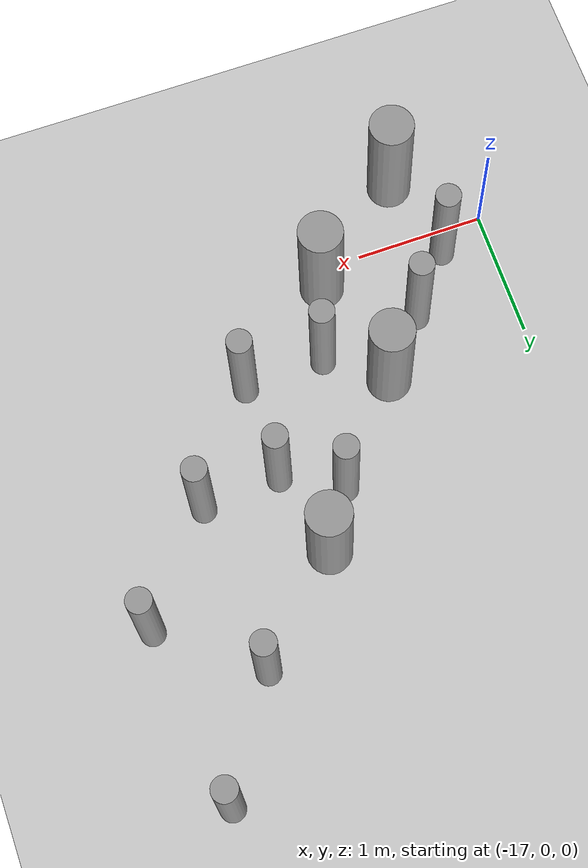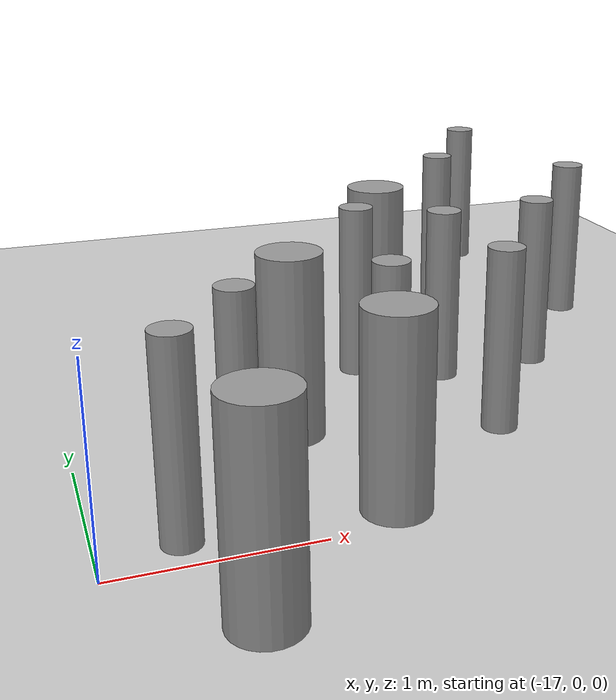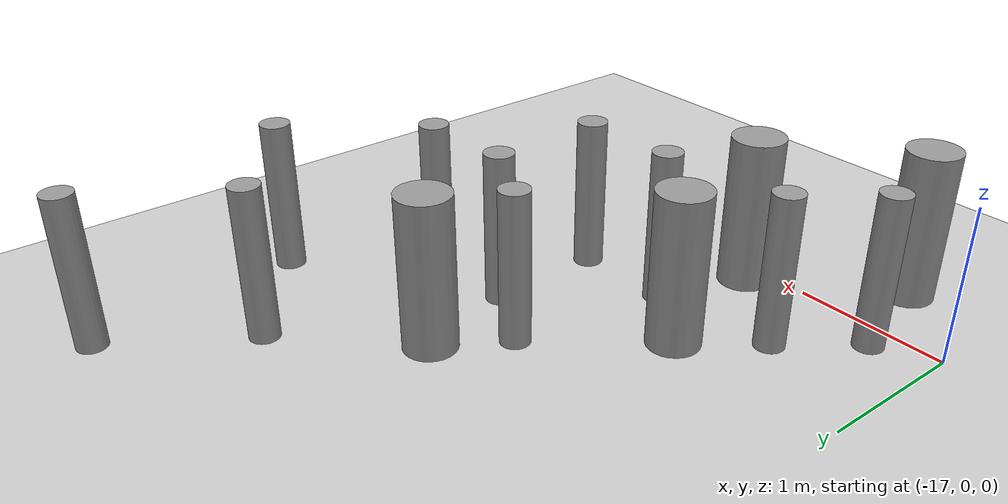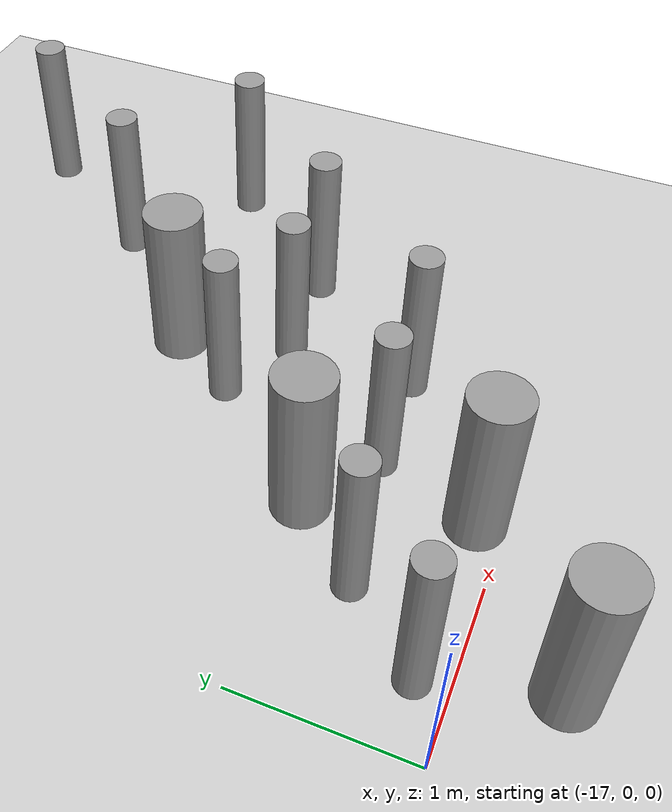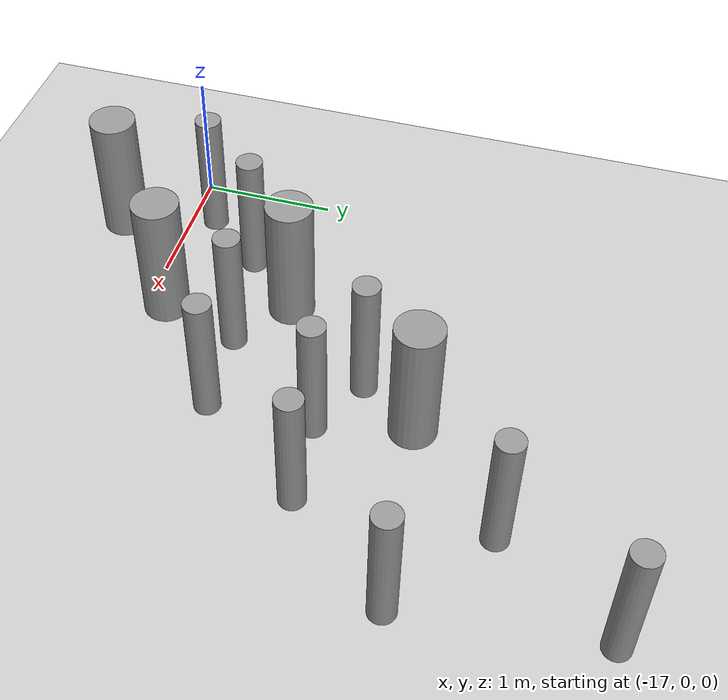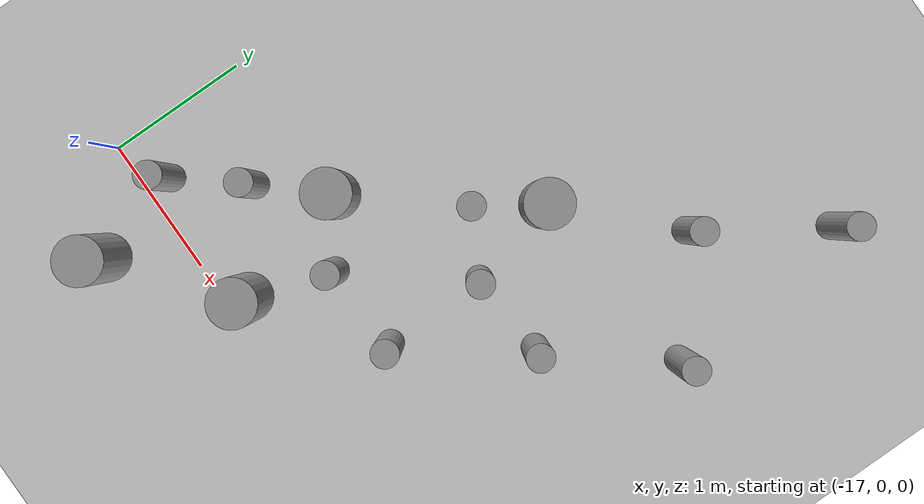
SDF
<sdf version="1.6">
 <world name="default">
  <model name="ground_plane">
   <static>1</static>
   <link name="link">
    <collision name="collision">
     <geometry><plane><normal>0 0 1</normal><size>100 100</size></plane></geometry>
     <surface><friction><ode><mu>100</mu><mu2>50</mu2></ode></friction></surface>
    </collision>
    <visual name="visual">
     <cast_shadows>0</cast_shadows>
     <geometry><plane><normal>0 0 1</normal><size>100 100</size></plane></geometry>
     <material>
      <script><uri>file://media/materials/scripts/gazebo.material</uri><name>Gazebo/Grey</name></script>
     </material>
    </visual>
   </link>
  </model>
  <model name="cyl_wall_clone_clone_1_clone_1_clone_clone_0_clone_1_clone_1_clone">
   <link name="link_0">
    <pose>-2.73893 -0.366465 0 0 -0 0</pose>
    <inertial>
     <mass>0.0374993</mass>
     <inertia>
      <ixx>0.00321281</ixx>
      <ixy>0</ixy>
      <ixz>0</ixz>
      <iyy>0.00321281</iyy>
      <iyz>0</iyz>
      <izz>0.000175774</izz>
     </inertia>
    </inertial>
    <visual name="visual">
     <geometry><cylinder><radius>0.0968661</radius><length>1</length></cylinder></geometry>
     <material>
      <lighting>1</lighting>
      <script><uri>file://media/materials/scripts/gazebo.material</uri><name>Gazebo/Grey</name></script>
      <ambient>0.3 0.3 0.3 1</ambient>
      <diffuse>0.7 0.7 0.7 1</diffuse>
      <specular>0.01 0.01 0.01 1</specular>
      <emissive>0 0 0 1</emissive>
     </material>
    </visual>
    <collision name="collision">
     <geometry><cylinder><radius>0.096866</radius><length>1</length></cylinder></geometry>
     <surface>
      <friction>
       <ode><mu>1</mu><mu2>1</mu2><fdir1>0 0 0</fdir1><slip1>0</slip1><slip2>0</slip2></ode>
       <torsional>
        <coefficient>1</coefficient>
        <patch_radius>0</patch_radius>
        <surface_radius>0</surface_radius>
        <use_patch_radius>1</use_patch_radius>
        <ode><slip>0</slip></ode>
       </torsional>
      </friction>
      <bounce><restitution_coefficient>0</restitution_coefficient><threshold>1e+06</threshold></bounce>
      <contact>
       <collide_without_contact>0</collide_without_contact>
       <collide_without_contact_bitmask>1</collide_without_contact_bitmask>
       <collide_bitmask>1</collide_bitmask>
       <ode>
        <soft_cfm>0</soft_cfm>
        <soft_erp>0.2</soft_erp>
        <kp>1e+13</kp>
        <kd>1</kd>
        <max_vel>0.01</max_vel>
        <min_depth>0</min_depth>
       </ode>
       <bullet>
        <split_impulse>1</split_impulse>
        <split_impulse_penetration_threshold>-0.01</split_impulse_penetration_threshold>
        <soft_cfm>0</soft_cfm>
        <soft_erp>0.2</soft_erp>
        <kp>1e+13</kp>
        <kd>1</kd>
       </bullet>
      </contact>
     </surface>
    </collision>
   </link>
   <link name="link_0_clone">
    <pose>-1.73893 0.61877 0 0 -0 0</pose>
    <inertial>
     <mass>0.0374993</mass>
     <inertia>
      <ixx>0.00321281</ixx>
      <ixy>0</ixy>
      <ixz>0</ixz>
      <iyy>0.00321281</iyy>
      <iyz>0</iyz>
      <izz>0.000175774</izz>
     </inertia>
    </inertial>
    <visual name="visual">
     <geometry><cylinder><radius>0.0968661</radius><length>1</length></cylinder></geometry>
     <material>
      <lighting>1</lighting>
      <script><uri>file://media/materials/scripts/gazebo.material</uri><name>Gazebo/Grey</name></script>
      <ambient>0.3 0.3 0.3 1</ambient>
      <diffuse>0.7 0.7 0.7 1</diffuse>
      <specular>0.01 0.01 0.01 1</specular>
      <emissive>0 0 0 1</emissive>
      <shader type="pixel"/>
     </material>
    </visual>
    <collision name="collision">
     <geometry><cylinder><radius>0.096866</radius><length>1</length></cylinder></geometry>
     <surface>
      <friction>
       <ode><mu>1</mu><mu2>1</mu2><fdir1>0 0 0</fdir1><slip1>0</slip1><slip2>0</slip2></ode>
       <torsional>
        <coefficient>1</coefficient>
        <patch_radius>0</patch_radius>
        <surface_radius>0</surface_radius>
        <use_patch_radius>1</use_patch_radius>
        <ode><slip>0</slip></ode>
       </torsional>
      </friction>
      <bounce><restitution_coefficient>0</restitution_coefficient><threshold>1e+06</threshold></bounce>
      <contact>
       <collide_without_contact>0</collide_without_contact>
       <collide_without_contact_bitmask>1</collide_without_contact_bitmask>
       <collide_bitmask>1</collide_bitmask>
       <ode>
        <soft_cfm>0</soft_cfm>
        <soft_erp>0.2</soft_erp>
        <kp>1e+13</kp>
        <kd>1</kd>
        <max_vel>0.01</max_vel>
        <min_depth>0</min_depth>
       </ode>
       <bullet>
        <split_impulse>1</split_impulse>
        <split_impulse_penetration_threshold>-0.01</split_impulse_penetration_threshold>
        <soft_cfm>0</soft_cfm>
        <soft_erp>0.2</soft_erp>
        <kp>1e+13</kp>
        <kd>1</kd>
       </bullet>
      </contact>
     </surface>
    </collision>
   </link>
   <link name="link_0_clone_clone">
    <pose>-0.327073 0.143919 0 0 -0 0</pose>
    <inertial>
     <mass>0.0374993</mass>
     <inertia>
      <ixx>0.00321281</ixx>
      <ixy>0</ixy>
      <ixz>0</ixz>
      <iyy>0.00321281</iyy>
      <iyz>0</iyz>
      <izz>0.000175774</izz>
     </inertia>
    </inertial>
    <visual name="visual">
     <geometry><cylinder><radius>0.0968661</radius><length>1</length></cylinder></geometry>
     <material>
      <lighting>1</lighting>
      <script><uri>file://media/materials/scripts/gazebo.material</uri><name>Gazebo/Grey</name></script>
      <ambient>0.3 0.3 0.3 1</ambient>
      <diffuse>0.7 0.7 0.7 1</diffuse>
      <specular>0.01 0.01 0.01 1</specular>
      <emissive>0 0 0 1</emissive>
      <shader type="pixel"/>
     </material>
    </visual>
    <collision name="collision">
     <geometry><cylinder><radius>0.096866</radius><length>1</length></cylinder></geometry>
     <surface>
      <friction>
       <ode><mu>1</mu><mu2>1</mu2><fdir1>0 0 0</fdir1><slip1>0</slip1><slip2>0</slip2></ode>
       <torsional>
        <coefficient>1</coefficient>
        <patch_radius>0</patch_radius>
        <surface_radius>0</surface_radius>
        <use_patch_radius>1</use_patch_radius>
        <ode><slip>0</slip></ode>
       </torsional>
      </friction>
      <bounce><restitution_coefficient>0</restitution_coefficient><threshold>1e+06</threshold></bounce>
      <contact>
       <collide_without_contact>0</collide_without_contact>
       <collide_without_contact_bitmask>1</collide_without_contact_bitmask>
       <collide_bitmask>1</collide_bitmask>
       <ode>
        <soft_cfm>0</soft_cfm>
        <soft_erp>0.2</soft_erp>
        <kp>1e+13</kp>
        <kd>1</kd>
        <max_vel>0.01</max_vel>
        <min_depth>0</min_depth>
       </ode>
       <bullet>
        <split_impulse>1</split_impulse>
        <split_impulse_penetration_threshold>-0.01</split_impulse_penetration_threshold>
        <soft_cfm>0</soft_cfm>
        <soft_erp>0.2</soft_erp>
        <kp>1e+13</kp>
        <kd>1</kd>
       </bullet>
      </contact>
     </surface>
    </collision>
   </link>
   <link name="link_0_clone_clone_0">
    <pose>1.26107 -0.419359 0 0 -0 0</pose>
    <inertial>
     <mass>0.0374993</mass>
     <inertia>
      <ixx>0.00321281</ixx>
      <ixy>0</ixy>
      <ixz>0</ixz>
      <iyy>0.00321281</iyy>
      <iyz>0</iyz>
      <izz>0.000175774</izz>
     </inertia>
    </inertial>
    <visual name="visual">
     <geometry><cylinder><radius>0.0968661</radius><length>1</length></cylinder></geometry>
     <material>
      <lighting>1</lighting>
      <script><uri>file://media/materials/scripts/gazebo.material</uri><name>Gazebo/Grey</name></script>
      <ambient>0.3 0.3 0.3 1</ambient>
      <diffuse>0.7 0.7 0.7 1</diffuse>
      <specular>0.01 0.01 0.01 1</specular>
      <emissive>0 0 0 1</emissive>
      <shader type="pixel"/>
     </material>
    </visual>
    <collision name="collision">
     <geometry><cylinder><radius>0.096866</radius><length>1</length></cylinder></geometry>
     <surface>
      <friction>
       <ode><mu>1</mu><mu2>1</mu2><fdir1>0 0 0</fdir1><slip1>0</slip1><slip2>0</slip2></ode>
       <torsional>
        <coefficient>1</coefficient>
        <patch_radius>0</patch_radius>
        <surface_radius>0</surface_radius>
        <use_patch_radius>1</use_patch_radius>
        <ode><slip>0</slip></ode>
       </torsional>
      </friction>
      <bounce><restitution_coefficient>0</restitution_coefficient><threshold>1e+06</threshold></bounce>
      <contact>
       <collide_without_contact>0</collide_without_contact>
       <collide_without_contact_bitmask>1</collide_without_contact_bitmask>
       <collide_bitmask>1</collide_bitmask>
       <ode>
        <soft_cfm>0</soft_cfm>
        <soft_erp>0.2</soft_erp>
        <kp>1e+13</kp>
        <kd>1</kd>
        <max_vel>0.01</max_vel>
        <min_depth>0</min_depth>
       </ode>
       <bullet>
        <split_impulse>1</split_impulse>
        <split_impulse_penetration_threshold>-0.01</split_impulse_penetration_threshold>
        <soft_cfm>0</soft_cfm>
        <soft_erp>0.2</soft_erp>
        <kp>1e+13</kp>
        <kd>1</kd>
       </bullet>
      </contact>
     </surface>
    </collision>
   </link>
   <link name="link_0_clone_clone_1">
    <pose>-1.73893 -0.277168 0 0 -0 0</pose>
    <inertial>
     <mass>0.0374993</mass>
     <inertia>
      <ixx>0.00321281</ixx>
      <ixy>0</ixy>
      <ixz>0</ixz>
      <iyy>0.00321281</iyy>
      <iyz>0</iyz>
      <izz>0.000175774</izz>
     </inertia>
    </inertial>
    <visual name="visual">
     <geometry><cylinder><radius>0.0968661</radius><length>1</length></cylinder></geometry>
     <material>
      <lighting>1</lighting>
      <script><uri>file://media/materials/scripts/gazebo.material</uri><name>Gazebo/Grey</name></script>
      <ambient>0.3 0.3 0.3 1</ambient>
      <diffuse>0.7 0.7 0.7 1</diffuse>
      <specular>0.01 0.01 0.01 1</specular>
      <emissive>0 0 0 1</emissive>
      <shader type="pixel"/>
     </material>
    </visual>
    <collision name="collision">
     <geometry><cylinder><radius>0.096866</radius><length>1</length></cylinder></geometry>
     <surface>
      <friction>
       <ode><mu>1</mu><mu2>1</mu2><fdir1>0 0 0</fdir1><slip1>0</slip1><slip2>0</slip2></ode>
       <torsional>
        <coefficient>1</coefficient>
        <patch_radius>0</patch_radius>
        <surface_radius>0</surface_radius>
        <use_patch_radius>1</use_patch_radius>
        <ode><slip>0</slip></ode>
       </torsional>
      </friction>
      <bounce><restitution_coefficient>0</restitution_coefficient><threshold>1e+06</threshold></bounce>
      <contact>
       <collide_without_contact>0</collide_without_contact>
       <collide_without_contact_bitmask>1</collide_without_contact_bitmask>
       <collide_bitmask>1</collide_bitmask>
       <ode>
        <soft_cfm>0</soft_cfm>
        <soft_erp>0.2</soft_erp>
        <kp>1e+13</kp>
        <kd>1</kd>
        <max_vel>0.01</max_vel>
        <min_depth>0</min_depth>
       </ode>
       <bullet>
        <split_impulse>1</split_impulse>
        <split_impulse_penetration_threshold>-0.01</split_impulse_penetration_threshold>
        <soft_cfm>0</soft_cfm>
        <soft_erp>0.2</soft_erp>
        <kp>1e+13</kp>
        <kd>1</kd>
       </bullet>
      </contact>
     </surface>
    </collision>
   </link>
   <link name="link_0_clone_clone_2">
    <pose>-0.738934 0.593961 0 0 -0 0</pose>
    <inertial>
     <mass>0.0374993</mass>
     <inertia>
      <ixx>0.00321281</ixx>
      <ixy>0</ixy>
      <ixz>0</ixz>
      <iyy>0.00321281</iyy>
      <iyz>0</iyz>
      <izz>0.000175774</izz>
     </inertia>
    </inertial>
    <visual name="visual">
     <geometry><cylinder><radius>0.0968661</radius><length>1</length></cylinder></geometry>
     <material>
      <lighting>1</lighting>
      <script><uri>file://media/materials/scripts/gazebo.material</uri><name>Gazebo/Grey</name></script>
      <ambient>0.3 0.3 0.3 1</ambient>
      <diffuse>0.7 0.7 0.7 1</diffuse>
      <specular>0.01 0.01 0.01 1</specular>
      <emissive>0 0 0 1</emissive>
      <shader type="pixel"/>
     </material>
    </visual>
    <collision name="collision">
     <geometry><cylinder><radius>0.096866</radius><length>1</length></cylinder></geometry>
     <surface>
      <friction>
       <ode><mu>1</mu><mu2>1</mu2><fdir1>0 0 0</fdir1><slip1>0</slip1><slip2>0</slip2></ode>
       <torsional>
        <coefficient>1</coefficient>
        <patch_radius>0</patch_radius>
        <surface_radius>0</surface_radius>
        <use_patch_radius>1</use_patch_radius>
        <ode><slip>0</slip></ode>
       </torsional>
      </friction>
      <bounce><restitution_coefficient>0</restitution_coefficient><threshold>1e+06</threshold></bounce>
      <contact>
       <collide_without_contact>0</collide_without_contact>
       <collide_without_contact_bitmask>1</collide_without_contact_bitmask>
       <collide_bitmask>1</collide_bitmask>
       <ode>
        <soft_cfm>0</soft_cfm>
        <soft_erp>0.2</soft_erp>
        <kp>1e+13</kp>
        <kd>1</kd>
        <max_vel>0.01</max_vel>
        <min_depth>0</min_depth>
       </ode>
       <bullet>
        <split_impulse>1</split_impulse>
        <split_impulse_penetration_threshold>-0.01</split_impulse_penetration_threshold>
        <soft_cfm>0</soft_cfm>
        <soft_erp>0.2</soft_erp>
        <kp>1e+13</kp>
        <kd>1</kd>
       </bullet>
      </contact>
     </surface>
    </collision>
   </link>
   <link name="link_0_clone_clone_3">
    <pose>0.261066 0.624849 0 0 -0 0</pose>
    <inertial>
     <mass>0.0374993</mass>
     <inertia>
      <ixx>0.00321281</ixx>
      <ixy>0</ixy>
      <ixz>0</ixz>
      <iyy>0.00321281</iyy>
      <iyz>0</iyz>
      <izz>0.000175774</izz>
     </inertia>
    </inertial>
    <visual name="visual">
     <geometry><cylinder><radius>0.0968661</radius><length>1</length></cylinder></geometry>
     <material>
      <lighting>1</lighting>
      <script><uri>file://media/materials/scripts/gazebo.material</uri><name>Gazebo/Grey</name></script>
      <ambient>0.3 0.3 0.3 1</ambient>
      <diffuse>0.7 0.7 0.7 1</diffuse>
      <specular>0.01 0.01 0.01 1</specular>
      <emissive>0 0 0 1</emissive>
      <shader type="pixel"/>
     </material>
    </visual>
    <collision name="collision">
     <geometry><cylinder><radius>0.096866</radius><length>1</length></cylinder></geometry>
     <surface>
      <friction>
       <ode><mu>1</mu><mu2>1</mu2><fdir1>0 0 0</fdir1><slip1>0</slip1><slip2>0</slip2></ode>
       <torsional>
        <coefficient>1</coefficient>
        <patch_radius>0</patch_radius>
        <surface_radius>0</surface_radius>
        <use_patch_radius>1</use_patch_radius>
        <ode><slip>0</slip></ode>
       </torsional>
      </friction>
      <bounce><restitution_coefficient>0</restitution_coefficient><threshold>1e+06</threshold></bounce>
      <contact>
       <collide_without_contact>0</collide_without_contact>
       <collide_without_contact_bitmask>1</collide_without_contact_bitmask>
       <collide_bitmask>1</collide_bitmask>
       <ode>
        <soft_cfm>0</soft_cfm>
        <soft_erp>0.2</soft_erp>
        <kp>1e+13</kp>
        <kd>1</kd>
        <max_vel>0.01</max_vel>
        <min_depth>0</min_depth>
       </ode>
       <bullet>
        <split_impulse>1</split_impulse>
        <split_impulse_penetration_threshold>-0.01</split_impulse_penetration_threshold>
        <soft_cfm>0</soft_cfm>
        <soft_erp>0.2</soft_erp>
        <kp>1e+13</kp>
        <kd>1</kd>
       </bullet>
      </contact>
     </surface>
    </collision>
   </link>
   <link name="link_0_clone_clone_4">
    <pose>-0.239049 -0.353105 0 0 -0 0</pose>
    <inertial>
     <mass>0.0374993</mass>
     <inertia>
      <ixx>0.00321281</ixx>
      <ixy>0</ixy>
      <ixz>0</ixz>
      <iyy>0.00321281</iyy>
      <iyz>0</iyz>
      <izz>0.000175774</izz>
     </inertia>
    </inertial>
    <visual name="visual">
     <geometry><cylinder><radius>0.0968661</radius><length>1</length></cylinder></geometry>
     <material>
      <lighting>1</lighting>
      <script><uri>file://media/materials/scripts/gazebo.material</uri><name>Gazebo/Grey</name></script>
      <ambient>0.3 0.3 0.3 1</ambient>
      <diffuse>0.7 0.7 0.7 1</diffuse>
      <specular>0.01 0.01 0.01 1</specular>
      <emissive>0 0 0 1</emissive>
      <shader type="pixel"/>
     </material>
    </visual>
    <collision name="collision">
     <geometry><cylinder><radius>0.096866</radius><length>1</length></cylinder></geometry>
     <surface>
      <friction>
       <ode><mu>1</mu><mu2>1</mu2><fdir1>0 0 0</fdir1><slip1>0</slip1><slip2>0</slip2></ode>
       <torsional>
        <coefficient>1</coefficient>
        <patch_radius>0</patch_radius>
        <surface_radius>0</surface_radius>
        <use_patch_radius>1</use_patch_radius>
        <ode><slip>0</slip></ode>
       </torsional>
      </friction>
      <bounce><restitution_coefficient>0</restitution_coefficient><threshold>1e+06</threshold></bounce>
      <contact>
       <collide_without_contact>0</collide_without_contact>
       <collide_without_contact_bitmask>1</collide_without_contact_bitmask>
       <collide_bitmask>1</collide_bitmask>
       <ode>
        <soft_cfm>0</soft_cfm>
        <soft_erp>0.2</soft_erp>
        <kp>1e+13</kp>
        <kd>1</kd>
        <max_vel>0.01</max_vel>
        <min_depth>0</min_depth>
       </ode>
       <bullet>
        <split_impulse>1</split_impulse>
        <split_impulse_penetration_threshold>-0.01</split_impulse_penetration_threshold>
        <soft_cfm>0</soft_cfm>
        <soft_erp>0.2</soft_erp>
        <kp>1e+13</kp>
        <kd>1</kd>
       </bullet>
      </contact>
     </surface>
    </collision>
   </link>
   <link name="link_0_clone_clone_5">
    <pose>0.672792 0.143919 0 0 -0 0</pose>
    <inertial>
     <mass>0.0374993</mass>
     <inertia>
      <ixx>0.00321281</ixx>
      <ixy>0</ixy>
      <ixz>0</ixz>
      <iyy>0.00321281</iyy>
      <iyz>0</iyz>
      <izz>0.000175774</izz>
     </inertia>
    </inertial>
    <visual name="visual">
     <geometry><cylinder><radius>0.0968661</radius><length>1</length></cylinder></geometry>
     <material>
      <lighting>1</lighting>
      <script><uri>file://media/materials/scripts/gazebo.material</uri><name>Gazebo/Grey</name></script>
      <ambient>0.3 0.3 0.3 1</ambient>
      <diffuse>0.7 0.7 0.7 1</diffuse>
      <specular>0.01 0.01 0.01 1</specular>
      <emissive>0 0 0 1</emissive>
      <shader type="pixel"/>
     </material>
    </visual>
    <collision name="collision">
     <geometry><cylinder><radius>0.096866</radius><length>1</length></cylinder></geometry>
     <surface>
      <friction>
       <ode><mu>1</mu><mu2>1</mu2><fdir1>0 0 0</fdir1><slip1>0</slip1><slip2>0</slip2></ode>
       <torsional>
        <coefficient>1</coefficient>
        <patch_radius>0</patch_radius>
        <surface_radius>0</surface_radius>
        <use_patch_radius>1</use_patch_radius>
        <ode><slip>0</slip></ode>
       </torsional>
      </friction>
      <bounce><restitution_coefficient>0</restitution_coefficient><threshold>1e+06</threshold></bounce>
      <contact>
       <collide_without_contact>0</collide_without_contact>
       <collide_without_contact_bitmask>1</collide_without_contact_bitmask>
       <collide_bitmask>1</collide_bitmask>
       <ode>
        <soft_cfm>0</soft_cfm>
        <soft_erp>0.2</soft_erp>
        <kp>1e+13</kp>
        <kd>1</kd>
        <max_vel>0.01</max_vel>
        <min_depth>0</min_depth>
       </ode>
       <bullet>
        <split_impulse>1</split_impulse>
        <split_impulse_penetration_threshold>-0.01</split_impulse_penetration_threshold>
        <soft_cfm>0</soft_cfm>
        <soft_erp>0.2</soft_erp>
        <kp>1e+13</kp>
        <kd>1</kd>
       </bullet>
      </contact>
     </surface>
    </collision>
   </link>
   <link name="link_0_clone_clone_6">
    <pose>1.84596 -0.433423 0 0 -0 0</pose>
    <inertial>
     <mass>0.0374993</mass>
     <inertia>
      <ixx>0.00321281</ixx>
      <ixy>0</ixy>
      <ixz>0</ixz>
      <iyy>0.00321281</iyy>
      <iyz>0</iyz>
      <izz>0.000175774</izz>
     </inertia>
    </inertial>
    <visual name="visual">
     <geometry><cylinder><radius>0.0968661</radius><length>1</length></cylinder></geometry>
     <material>
      <lighting>1</lighting>
      <script><uri>file://media/materials/scripts/gazebo.material</uri><name>Gazebo/Grey</name></script>
      <ambient>0.3 0.3 0.3 1</ambient>
      <diffuse>0.7 0.7 0.7 1</diffuse>
      <specular>0.01 0.01 0.01 1</specular>
      <emissive>0 0 0 1</emissive>
      <shader type="pixel"/>
     </material>
    </visual>
    <collision name="collision">
     <geometry><cylinder><radius>0.096866</radius><length>1</length></cylinder></geometry>
     <surface>
      <friction>
       <ode><mu>1</mu><mu2>1</mu2><fdir1>0 0 0</fdir1><slip1>0</slip1><slip2>0</slip2></ode>
       <torsional>
        <coefficient>1</coefficient>
        <patch_radius>0</patch_radius>
        <surface_radius>0</surface_radius>
        <use_patch_radius>1</use_patch_radius>
        <ode><slip>0</slip></ode>
       </torsional>
      </friction>
      <bounce><restitution_coefficient>0</restitution_coefficient><threshold>1e+06</threshold></bounce>
      <contact>
       <collide_without_contact>0</collide_without_contact>
       <collide_without_contact_bitmask>1</collide_without_contact_bitmask>
       <collide_bitmask>1</collide_bitmask>
       <ode>
        <soft_cfm>0</soft_cfm>
        <soft_erp>0.2</soft_erp>
        <kp>1e+13</kp>
        <kd>1</kd>
        <max_vel>0.01</max_vel>
        <min_depth>0</min_depth>
       </ode>
       <bullet>
        <split_impulse>1</split_impulse>
        <split_impulse_penetration_threshold>-0.01</split_impulse_penetration_threshold>
        <soft_cfm>0</soft_cfm>
        <soft_erp>0.2</soft_erp>
        <kp>1e+13</kp>
        <kd>1</kd>
       </bullet>
      </contact>
     </surface>
    </collision>
   </link>
   <link name="link_1">
    <pose>-0.738934 -0.397931 0 0 -0 0</pose>
    <inertial>
     <mass>0.117398</mass>
     <inertia>
      <ixx>0.0106445</ixx>
      <ixy>0</ixy>
      <ixz>0</ixz>
      <iyy>0.0106445</iyy>
      <iyz>0</iyz>
      <izz>0.00172278</izz>
     </inertia>
    </inertial>
    <visual name="visual">
     <geometry><cylinder><radius>0.171317</radius><length>1</length></cylinder></geometry>
     <material>
      <lighting>1</lighting>
      <script><uri>file://media/materials/scripts/gazebo.material</uri><name>Gazebo/Grey</name></script>
      <ambient>0.3 0.3 0.3 1</ambient>
      <diffuse>0.7 0.7 0.7 1</diffuse>
      <specular>0.01 0.01 0.01 1</specular>
      <emissive>0 0 0 1</emissive>
     </material>
    </visual>
    <collision name="collision">
     <geometry><cylinder><radius>0.171317</radius><length>1</length></cylinder></geometry>
     <surface>
      <friction>
       <ode><mu>1</mu><mu2>1</mu2><fdir1>0 0 0</fdir1><slip1>0</slip1><slip2>0</slip2></ode>
       <torsional>
        <coefficient>1</coefficient>
        <patch_radius>0</patch_radius>
        <surface_radius>0</surface_radius>
        <use_patch_radius>1</use_patch_radius>
        <ode><slip>0</slip></ode>
       </torsional>
      </friction>
      <bounce><restitution_coefficient>0</restitution_coefficient><threshold>1e+06</threshold></bounce>
      <contact>
       <collide_without_contact>0</collide_without_contact>
       <collide_without_contact_bitmask>1</collide_without_contact_bitmask>
       <collide_bitmask>1</collide_bitmask>
       <ode>
        <soft_cfm>0</soft_cfm>
        <soft_erp>0.2</soft_erp>
        <kp>1e+13</kp>
        <kd>1</kd>
        <max_vel>0.01</max_vel>
        <min_depth>0</min_depth>
       </ode>
       <bullet>
        <split_impulse>1</split_impulse>
        <split_impulse_penetration_threshold>-0.01</split_impulse_penetration_threshold>
        <soft_cfm>0</soft_cfm>
        <soft_erp>0.2</soft_erp>
        <kp>1e+13</kp>
        <kd>1</kd>
       </bullet>
      </contact>
     </surface>
    </collision>
   </link>
   <link name="link_1_clone">
    <pose>0.697784 -0.380861 0 0 -0 0</pose>
    <inertial>
     <mass>0.117398</mass>
     <inertia>
      <ixx>0.0106445</ixx>
      <ixy>0</ixy>
      <ixz>0</ixz>
      <iyy>0.0106445</iyy>
      <iyz>0</iyz>
      <izz>0.00172278</izz>
     </inertia>
    </inertial>
    <visual name="visual">
     <geometry><cylinder><radius>0.171317</radius><length>1</length></cylinder></geometry>
     <material>
      <lighting>1</lighting>
      <script><uri>file://media/materials/scripts/gazebo.material</uri><name>Gazebo/Grey</name></script>
      <ambient>0.3 0.3 0.3 1</ambient>
      <diffuse>0.7 0.7 0.7 1</diffuse>
      <specular>0.01 0.01 0.01 1</specular>
      <emissive>0 0 0 1</emissive>
      <shader type="pixel"/>
     </material>
    </visual>
    <collision name="collision">
     <geometry><cylinder><radius>0.171317</radius><length>1</length></cylinder></geometry>
     <surface>
      <friction>
       <ode><mu>1</mu><mu2>1</mu2><fdir1>0 0 0</fdir1><slip1>0</slip1><slip2>0</slip2></ode>
       <torsional>
        <coefficient>1</coefficient>
        <patch_radius>0</patch_radius>
        <surface_radius>0</surface_radius>
        <use_patch_radius>1</use_patch_radius>
        <ode><slip>0</slip></ode>
       </torsional>
      </friction>
      <bounce><restitution_coefficient>0</restitution_coefficient><threshold>1e+06</threshold></bounce>
      <contact>
       <collide_without_contact>0</collide_without_contact>
       <collide_without_contact_bitmask>1</collide_without_contact_bitmask>
       <collide_bitmask>1</collide_bitmask>
       <ode>
        <soft_cfm>0</soft_cfm>
        <soft_erp>0.2</soft_erp>
        <kp>1e+13</kp>
        <kd>1</kd>
        <max_vel>0.01</max_vel>
        <min_depth>0</min_depth>
       </ode>
       <bullet>
        <split_impulse>1</split_impulse>
        <split_impulse_penetration_threshold>-0.01</split_impulse_penetration_threshold>
        <soft_cfm>0</soft_cfm>
        <soft_erp>0.2</soft_erp>
        <kp>1e+13</kp>
        <kd>1</kd>
       </bullet>
      </contact>
     </surface>
    </collision>
   </link>
   <link name="link_1_clone_0">
    <pose>1.26107 0.358974 0 0 -0 0</pose>
    <inertial>
     <mass>0.117398</mass>
     <inertia>
      <ixx>0.0106445</ixx>
      <ixy>0</ixy>
      <ixz>0</ixz>
      <iyy>0.0106445</iyy>
      <iyz>0</iyz>
      <izz>0.00172278</izz>
     </inertia>
    </inertial>
    <visual name="visual">
     <geometry><cylinder><radius>0.171317</radius><length>1</length></cylinder></geometry>
     <material>
      <lighting>1</lighting>
      <script><uri>file://media/materials/scripts/gazebo.material</uri><name>Gazebo/Grey</name></script>
      <ambient>0.3 0.3 0.3 1</ambient>
      <diffuse>0.7 0.7 0.7 1</diffuse>
      <specular>0.01 0.01 0.01 1</specular>
      <emissive>0 0 0 1</emissive>
      <shader type="pixel"/>
     </material>
    </visual>
    <collision name="collision">
     <geometry><cylinder><radius>0.171317</radius><length>1</length></cylinder></geometry>
     <surface>
      <friction>
       <ode><mu>1</mu><mu2>1</mu2><fdir1>0 0 0</fdir1><slip1>0</slip1><slip2>0</slip2></ode>
       <torsional>
        <coefficient>1</coefficient>
        <patch_radius>0</patch_radius>
        <surface_radius>0</surface_radius>
        <use_patch_radius>1</use_patch_radius>
        <ode><slip>0</slip></ode>
       </torsional>
      </friction>
      <bounce><restitution_coefficient>0</restitution_coefficient><threshold>1e+06</threshold></bounce>
      <contact>
       <collide_without_contact>0</collide_without_contact>
       <collide_without_contact_bitmask>1</collide_without_contact_bitmask>
       <collide_bitmask>1</collide_bitmask>
       <ode>
        <soft_cfm>0</soft_cfm>
        <soft_erp>0.2</soft_erp>
        <kp>1e+13</kp>
        <kd>1</kd>
        <max_vel>0.01</max_vel>
        <min_depth>0</min_depth>
       </ode>
       <bullet>
        <split_impulse>1</split_impulse>
        <split_impulse_penetration_threshold>-0.01</split_impulse_penetration_threshold>
        <soft_cfm>0</soft_cfm>
        <soft_erp>0.2</soft_erp>
        <kp>1e+13</kp>
        <kd>1</kd>
       </bullet>
      </contact>
     </surface>
    </collision>
   </link>
   <link name="link_1_clone_1">
    <pose>2.26107 0.143919 0 0 -0 0</pose>
    <inertial>
     <mass>0.117398</mass>
     <inertia>
      <ixx>0.0106445</ixx>
      <ixy>0</ixy>
      <ixz>0</ixz>
      <iyy>0.0106445</iyy>
      <iyz>0</iyz>
      <izz>0.00172278</izz>
     </inertia>
    </inertial>
    <visual name="visual">
     <geometry><cylinder><radius>0.171317</radius><length>1</length></cylinder></geometry>
     <material>
      <lighting>1</lighting>
      <script><uri>file://media/materials/scripts/gazebo.material</uri><name>Gazebo/Grey</name></script>
      <ambient>0.3 0.3 0.3 1</ambient>
      <diffuse>0.7 0.7 0.7 1</diffuse>
      <specular>0.01 0.01 0.01 1</specular>
      <emissive>0 0 0 1</emissive>
      <shader type="pixel"/>
     </material>
    </visual>
    <collision name="collision">
     <geometry><cylinder><radius>0.171317</radius><length>1</length></cylinder></geometry>
     <surface>
      <friction>
       <ode><mu>1</mu><mu2>1</mu2><fdir1>0 0 0</fdir1><slip1>0</slip1><slip2>0</slip2></ode>
       <torsional>
        <coefficient>1</coefficient>
        <patch_radius>0</patch_radius>
        <surface_radius>0</surface_radius>
        <use_patch_radius>1</use_patch_radius>
        <ode><slip>0</slip></ode>
       </torsional>
      </friction>
      <bounce><restitution_coefficient>0</restitution_coefficient><threshold>1e+06</threshold></bounce>
      <contact>
       <collide_without_contact>0</collide_without_contact>
       <collide_without_contact_bitmask>1</collide_without_contact_bitmask>
       <collide_bitmask>1</collide_bitmask>
       <ode>
        <soft_cfm>0</soft_cfm>
        <soft_erp>0.2</soft_erp>
        <kp>1e+13</kp>
        <kd>1</kd>
        <max_vel>0.01</max_vel>
        <min_depth>0</min_depth>
       </ode>
       <bullet>
        <split_impulse>1</split_impulse>
        <split_impulse_penetration_threshold>-0.01</split_impulse_penetration_threshold>
        <soft_cfm>0</soft_cfm>
        <soft_erp>0.2</soft_erp>
        <kp>1e+13</kp>
        <kd>1</kd>
       </bullet>
      </contact>
     </surface>
    </collision>
   </link>
   <static>1</static>
   <pose>-15.1323 1.36413 0.5 0 0 -2.24061</pose>
  </model>
 </world>
</sdf>
